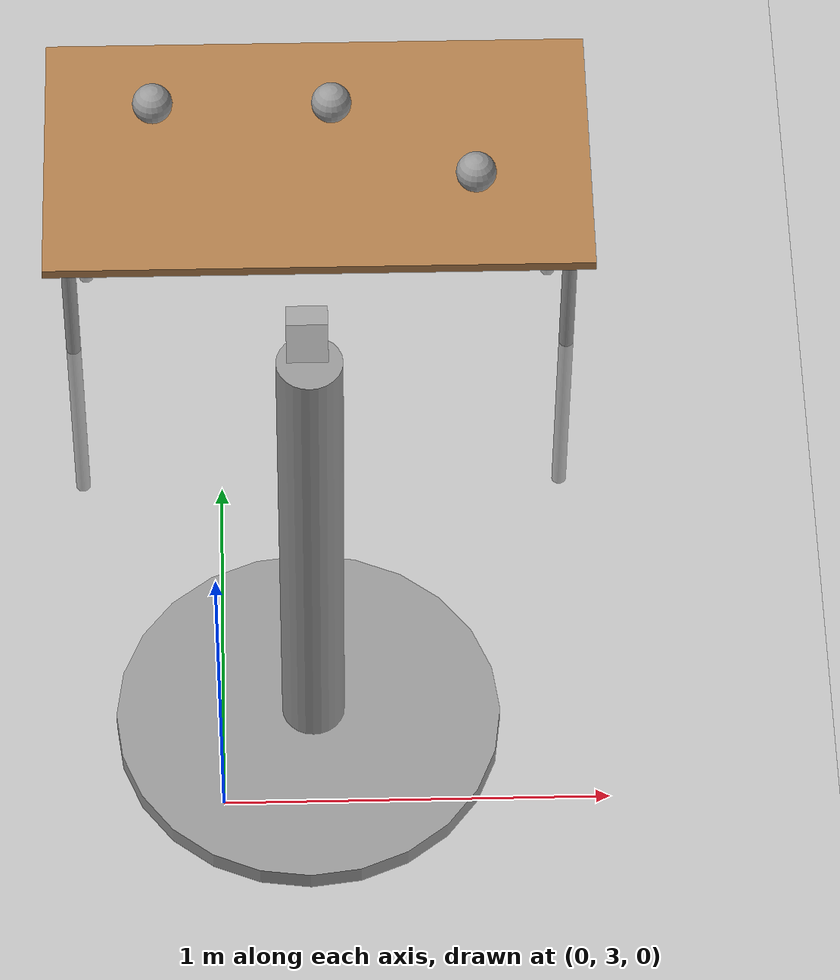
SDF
<sdf version="1.7">
 <world name="default">
  <light name="sun" type="directional">
   <pose>0 0 10 0 -0 0</pose>
   <diffuse>0.8 0.8 0.8 1</diffuse>
   <specular>0.2 0.2 0.2 1</specular>
   <attenuation>
    <range>1000</range>
    <constant>0.9</constant>
    <linear>0.01</linear>
    <quadratic>0.001</quadratic>
   </attenuation>
   <direction>-0.5 0.1 -0.9</direction>
   <spot><inner_angle>0</inner_angle><outer_angle>0</outer_angle><falloff>0</falloff></spot>
  </light>
  <model name="ground_plane">
   <static>1</static>
   <link name="link">
    <collision name="collision">
     <geometry><plane><normal>0 0 1</normal><size>100 100</size></plane></geometry>
     <surface><friction><ode><mu>100</mu><mu2>50</mu2></ode></friction></surface>
    </collision>
    <visual name="visual">
     <cast_shadows>0</cast_shadows>
     <geometry><plane><normal>0 0 1</normal><size>100 100</size></plane></geometry>
     <material>
      <script><uri>file://media/materials/scripts/gazebo.material</uri><name>Gazebo/Grey</name></script>
     </material>
    </visual>
   </link>
  </model>
  <gravity>0 0 -9.8</gravity>
  <magnetic_field>6e-06 2.3e-05 -4.2e-05</magnetic_field>
  <atmosphere type="adiabatic"/>
  <physics type="ode">
   <max_step_size>0.001</max_step_size>
   <real_time_factor>1</real_time_factor>
   <real_time_update_rate>1000</real_time_update_rate>
  </physics>
  <scene><ambient>0.4 0.4 0.4 1</ambient><background>0.7 0.7 0.7 1</background><shadows>1</shadows></scene>
  <spherical_coordinates>
   <surface_model>EARTH_WGS84</surface_model>
   <latitude_deg>0</latitude_deg>
   <longitude_deg>0</longitude_deg>
   <elevation>0</elevation>
   <heading_deg>0</heading_deg>
  </spherical_coordinates>
  <model name="table_3balls">
   <link name="link">
    <visual name="front_left_leg">
     <pose>0.68 0.38 0.5 0 -0 0</pose>
     <geometry><cylinder><radius>0.02</radius><length>1</length></cylinder></geometry>
     <material>
      <script><uri>file://media/materials/scripts/gazebo.material</uri><name>Gazebo/Grey</name></script>
      <shader type="pixel"/>
     </material>
    </visual>
    <visual name="visual1">
     <pose>0 0 1 0 -0 0</pose>
     <geometry><box><size>1.5 0.8 0.03</size></box></geometry>
     <material>
      <script><uri>file://media/materials/scripts/gazebo.material</uri><name>Gazebo/Wood</name></script>
      <shader type="pixel"/>
     </material>
    </visual>
    <visual name="back_right_leg">
     <pose>-0.68 -0.38 0.5 0 -0 0</pose>
     <geometry><cylinder><radius>0.02</radius><length>1</length></cylinder></geometry>
     <material>
      <script><uri>file://media/materials/scripts/gazebo.material</uri><name>Gazebo/Grey</name></script>
      <shader type="pixel"/>
     </material>
    </visual>
    <visual name="back_left_leg">
     <pose>-0.68 0.38 0.5 0 -0 0</pose>
     <geometry><cylinder><radius>0.02</radius><length>1</length></cylinder></geometry>
     <material>
      <script><uri>file://media/materials/scripts/gazebo.material</uri><name>Gazebo/Grey</name></script>
      <shader type="pixel"/>
     </material>
    </visual>
    <visual name="front_right_leg">
     <pose>0.68 -0.38 0.5 0 -0 0</pose>
     <geometry><cylinder><radius>0.02</radius><length>1</length></cylinder></geometry>
     <material>
      <script><uri>file://media/materials/scripts/gazebo.material</uri><name>Gazebo/Grey</name></script>
      <shader type="pixel"/>
     </material>
    </visual>
    <collision name="surface">
     <pose>0 0 1 0 -0 0</pose>
     <geometry><box><size>1.5 0.8 0.03</size></box></geometry>
     <surface>
      <friction>
       <ode><mu>0.6</mu><mu2>0.6</mu2><fdir1>0 0 0</fdir1><slip1>0</slip1><slip2>0</slip2></ode>
       <torsional>
        <coefficient>1</coefficient>
        <patch_radius>0</patch_radius>
        <surface_radius>0</surface_radius>
        <use_patch_radius>1</use_patch_radius>
        <ode><slip>0</slip></ode>
       </torsional>
      </friction>
      <bounce><restitution_coefficient>0</restitution_coefficient><threshold>1e+06</threshold></bounce>
      <contact>
       <collide_without_contact>0</collide_without_contact>
       <collide_without_contact_bitmask>1</collide_without_contact_bitmask>
       <collide_bitmask>1</collide_bitmask>
       <ode>
        <soft_cfm>0</soft_cfm>
        <soft_erp>0.2</soft_erp>
        <kp>1e+13</kp>
        <kd>1</kd>
        <max_vel>0.01</max_vel>
        <min_depth>0</min_depth>
       </ode>
       <bullet>
        <split_impulse>1</split_impulse>
        <split_impulse_penetration_threshold>-0.01</split_impulse_penetration_threshold>
        <soft_cfm>0</soft_cfm>
        <soft_erp>0.2</soft_erp>
        <kp>1e+13</kp>
        <kd>1</kd>
       </bullet>
      </contact>
     </surface>
    </collision>
    <collision name="front_left_leg">
     <pose>0.68 0.38 0.5 0 -0 0</pose>
     <geometry><cylinder><radius>0.02</radius><length>1</length></cylinder></geometry>
     <surface>
      <friction>
       <ode><mu>1</mu><mu2>1</mu2><fdir1>0 0 0</fdir1><slip1>0</slip1><slip2>0</slip2></ode>
       <torsional>
        <coefficient>1</coefficient>
        <patch_radius>0</patch_radius>
        <surface_radius>0</surface_radius>
        <use_patch_radius>1</use_patch_radius>
        <ode><slip>0</slip></ode>
       </torsional>
      </friction>
      <bounce><restitution_coefficient>0</restitution_coefficient><threshold>1e+06</threshold></bounce>
      <contact>
       <collide_without_contact>0</collide_without_contact>
       <collide_without_contact_bitmask>1</collide_without_contact_bitmask>
       <collide_bitmask>1</collide_bitmask>
       <ode>
        <soft_cfm>0</soft_cfm>
        <soft_erp>0.2</soft_erp>
        <kp>1e+13</kp>
        <kd>1</kd>
        <max_vel>0.01</max_vel>
        <min_depth>0</min_depth>
       </ode>
       <bullet>
        <split_impulse>1</split_impulse>
        <split_impulse_penetration_threshold>-0.01</split_impulse_penetration_threshold>
        <soft_cfm>0</soft_cfm>
        <soft_erp>0.2</soft_erp>
        <kp>1e+13</kp>
        <kd>1</kd>
       </bullet>
      </contact>
     </surface>
    </collision>
    <collision name="front_right_leg">
     <pose>0.68 -0.38 0.5 0 -0 0</pose>
     <geometry><cylinder><radius>0.02</radius><length>1</length></cylinder></geometry>
     <surface>
      <friction>
       <ode><mu>1</mu><mu2>1</mu2><fdir1>0 0 0</fdir1><slip1>0</slip1><slip2>0</slip2></ode>
       <torsional>
        <coefficient>1</coefficient>
        <patch_radius>0</patch_radius>
        <surface_radius>0</surface_radius>
        <use_patch_radius>1</use_patch_radius>
        <ode><slip>0</slip></ode>
       </torsional>
      </friction>
      <bounce><restitution_coefficient>0</restitution_coefficient><threshold>1e+06</threshold></bounce>
      <contact>
       <collide_without_contact>0</collide_without_contact>
       <collide_without_contact_bitmask>1</collide_without_contact_bitmask>
       <collide_bitmask>1</collide_bitmask>
       <ode>
        <soft_cfm>0</soft_cfm>
        <soft_erp>0.2</soft_erp>
        <kp>1e+13</kp>
        <kd>1</kd>
        <max_vel>0.01</max_vel>
        <min_depth>0</min_depth>
       </ode>
       <bullet>
        <split_impulse>1</split_impulse>
        <split_impulse_penetration_threshold>-0.01</split_impulse_penetration_threshold>
        <soft_cfm>0</soft_cfm>
        <soft_erp>0.2</soft_erp>
        <kp>1e+13</kp>
        <kd>1</kd>
       </bullet>
      </contact>
     </surface>
    </collision>
    <collision name="back_right_leg">
     <pose>-0.68 -0.38 0.5 0 -0 0</pose>
     <geometry><cylinder><radius>0.02</radius><length>1</length></cylinder></geometry>
     <surface>
      <friction>
       <ode><mu>1</mu><mu2>1</mu2><fdir1>0 0 0</fdir1><slip1>0</slip1><slip2>0</slip2></ode>
       <torsional>
        <coefficient>1</coefficient>
        <patch_radius>0</patch_radius>
        <surface_radius>0</surface_radius>
        <use_patch_radius>1</use_patch_radius>
        <ode><slip>0</slip></ode>
       </torsional>
      </friction>
      <bounce><restitution_coefficient>0</restitution_coefficient><threshold>1e+06</threshold></bounce>
      <contact>
       <collide_without_contact>0</collide_without_contact>
       <collide_without_contact_bitmask>1</collide_without_contact_bitmask>
       <collide_bitmask>1</collide_bitmask>
       <ode>
        <soft_cfm>0</soft_cfm>
        <soft_erp>0.2</soft_erp>
        <kp>1e+13</kp>
        <kd>1</kd>
        <max_vel>0.01</max_vel>
        <min_depth>0</min_depth>
       </ode>
       <bullet>
        <split_impulse>1</split_impulse>
        <split_impulse_penetration_threshold>-0.01</split_impulse_penetration_threshold>
        <soft_cfm>0</soft_cfm>
        <soft_erp>0.2</soft_erp>
        <kp>1e+13</kp>
        <kd>1</kd>
       </bullet>
      </contact>
     </surface>
    </collision>
    <collision name="back_left_leg">
     <pose>-0.68 0.38 0.5 0 -0 0</pose>
     <geometry><cylinder><radius>0.02</radius><length>1</length></cylinder></geometry>
     <surface>
      <friction>
       <ode><mu>1</mu><mu2>1</mu2><fdir1>0 0 0</fdir1><slip1>0</slip1><slip2>0</slip2></ode>
       <torsional>
        <coefficient>1</coefficient>
        <patch_radius>0</patch_radius>
        <surface_radius>0</surface_radius>
        <use_patch_radius>1</use_patch_radius>
        <ode><slip>0</slip></ode>
       </torsional>
      </friction>
      <bounce><restitution_coefficient>0</restitution_coefficient><threshold>1e+06</threshold></bounce>
      <contact>
       <collide_without_contact>0</collide_without_contact>
       <collide_without_contact_bitmask>1</collide_without_contact_bitmask>
       <collide_bitmask>1</collide_bitmask>
       <ode>
        <soft_cfm>0</soft_cfm>
        <soft_erp>0.2</soft_erp>
        <kp>1e+13</kp>
        <kd>1</kd>
        <max_vel>0.01</max_vel>
        <min_depth>0</min_depth>
       </ode>
       <bullet>
        <split_impulse>1</split_impulse>
        <split_impulse_penetration_threshold>-0.01</split_impulse_penetration_threshold>
        <soft_cfm>0</soft_cfm>
        <soft_erp>0.2</soft_erp>
        <kp>1e+13</kp>
        <kd>1</kd>
       </bullet>
      </contact>
     </surface>
    </collision>
   </link>
   <link name="link_0">
    <inertial>
     <mass>0.0013865</mass>
     <inertia>
      <ixx>1.72396e-06</ixx>
      <ixy>0</ixy>
      <ixz>0</ixz>
      <iyy>1.72396e-06</iyy>
      <iyz>0</iyz>
      <izz>1.72396e-06</izz>
     </inertia>
    </inertial>
    <pose>0.432818 -0.130321 1.0814 0 -0 0</pose>
    <visual name="visual">
     <geometry><sphere><radius>0.0557538</radius></sphere></geometry>
     <material>
      <lighting>1</lighting>
      <script><uri>file://media/materials/scripts/gazebo.material</uri><name>Gazebo/Grey</name></script>
      <shader type="pixel"/>
     </material>
    </visual>
    <collision name="collision">
     <geometry><sphere><radius>0.055754</radius></sphere></geometry>
     <surface>
      <friction>
       <ode><mu>1</mu><mu2>1</mu2><fdir1>0 0 0</fdir1><slip1>0</slip1><slip2>0</slip2></ode>
       <torsional>
        <coefficient>1</coefficient>
        <patch_radius>0</patch_radius>
        <surface_radius>0</surface_radius>
        <use_patch_radius>1</use_patch_radius>
        <ode><slip>0</slip></ode>
       </torsional>
      </friction>
      <bounce><restitution_coefficient>0</restitution_coefficient><threshold>1e+06</threshold></bounce>
      <contact>
       <collide_without_contact>0</collide_without_contact>
       <collide_without_contact_bitmask>1</collide_without_contact_bitmask>
       <collide_bitmask>1</collide_bitmask>
       <ode>
        <soft_cfm>0</soft_cfm>
        <soft_erp>0.2</soft_erp>
        <kp>1e+13</kp>
        <kd>1</kd>
        <max_vel>0.01</max_vel>
        <min_depth>0</min_depth>
       </ode>
       <bullet>
        <split_impulse>1</split_impulse>
        <split_impulse_penetration_threshold>-0.01</split_impulse_penetration_threshold>
        <soft_cfm>0</soft_cfm>
        <soft_erp>0.2</soft_erp>
        <kp>1e+13</kp>
        <kd>1</kd>
       </bullet>
      </contact>
     </surface>
    </collision>
   </link>
   <link name="link_0_clone">
    <inertial>
     <mass>0.0013865</mass>
     <inertia>
      <ixx>1.72396e-06</ixx>
      <ixy>0</ixy>
      <ixz>0</ixz>
      <iyy>1.72396e-06</iyy>
      <iyz>0</iyz>
      <izz>1.72396e-06</izz>
     </inertia>
    </inertial>
    <pose>-0.450537 0.130503 1.0814 0 -0 0</pose>
    <visual name="visual">
     <geometry><sphere><radius>0.0557538</radius></sphere></geometry>
     <material>
      <lighting>1</lighting>
      <script><uri>file://media/materials/scripts/gazebo.material</uri><name>Gazebo/Grey</name></script>
      <shader type="pixel"/>
     </material>
    </visual>
    <collision name="collision">
     <geometry><sphere><radius>0.055754</radius></sphere></geometry>
     <surface>
      <friction>
       <ode><mu>1</mu><mu2>1</mu2><fdir1>0 0 0</fdir1><slip1>0</slip1><slip2>0</slip2></ode>
       <torsional>
        <coefficient>1</coefficient>
        <patch_radius>0</patch_radius>
        <surface_radius>0</surface_radius>
        <use_patch_radius>1</use_patch_radius>
        <ode><slip>0</slip></ode>
       </torsional>
      </friction>
      <bounce><restitution_coefficient>0</restitution_coefficient><threshold>1e+06</threshold></bounce>
      <contact>
       <collide_without_contact>0</collide_without_contact>
       <collide_without_contact_bitmask>1</collide_without_contact_bitmask>
       <collide_bitmask>1</collide_bitmask>
       <ode>
        <soft_cfm>0</soft_cfm>
        <soft_erp>0.2</soft_erp>
        <kp>1e+13</kp>
        <kd>1</kd>
        <max_vel>0.01</max_vel>
        <min_depth>0</min_depth>
       </ode>
       <bullet>
        <split_impulse>1</split_impulse>
        <split_impulse_penetration_threshold>-0.01</split_impulse_penetration_threshold>
        <soft_cfm>0</soft_cfm>
        <soft_erp>0.2</soft_erp>
        <kp>1e+13</kp>
        <kd>1</kd>
       </bullet>
      </contact>
     </surface>
    </collision>
   </link>
   <link name="link_0_clone_0">
    <inertial>
     <mass>0.0013865</mass>
     <inertia>
      <ixx>1.72396e-06</ixx>
      <ixy>0</ixy>
      <ixz>0</ixz>
      <iyy>1.72396e-06</iyy>
      <iyz>0</iyz>
      <izz>1.72396e-06</izz>
     </inertia>
    </inertial>
    <pose>0.041991 0.123994 1.0814 0 -0 0</pose>
    <visual name="visual">
     <geometry><sphere><radius>0.0557538</radius></sphere></geometry>
     <material>
      <lighting>1</lighting>
      <script><uri>file://media/materials/scripts/gazebo.material</uri><name>Gazebo/Grey</name></script>
      <shader type="pixel"/>
     </material>
    </visual>
    <collision name="collision">
     <geometry><sphere><radius>0.055754</radius></sphere></geometry>
     <surface>
      <friction>
       <ode><mu>1</mu><mu2>1</mu2><fdir1>0 0 0</fdir1><slip1>0</slip1><slip2>0</slip2></ode>
       <torsional>
        <coefficient>1</coefficient>
        <patch_radius>0</patch_radius>
        <surface_radius>0</surface_radius>
        <use_patch_radius>1</use_patch_radius>
        <ode><slip>0</slip></ode>
       </torsional>
      </friction>
      <bounce><restitution_coefficient>0</restitution_coefficient><threshold>1e+06</threshold></bounce>
      <contact>
       <collide_without_contact>0</collide_without_contact>
       <collide_without_contact_bitmask>1</collide_without_contact_bitmask>
       <collide_bitmask>1</collide_bitmask>
       <ode>
        <soft_cfm>0</soft_cfm>
        <soft_erp>0.2</soft_erp>
        <kp>1e+13</kp>
        <kd>1</kd>
        <max_vel>0.01</max_vel>
        <min_depth>0</min_depth>
       </ode>
       <bullet>
        <split_impulse>1</split_impulse>
        <split_impulse_penetration_threshold>-0.01</split_impulse_penetration_threshold>
        <soft_cfm>0</soft_cfm>
        <soft_erp>0.2</soft_erp>
        <kp>1e+13</kp>
        <kd>1</kd>
       </bullet>
      </contact>
     </surface>
    </collision>
   </link>
   <static>1</static>
   <pose>0.27245 4.87329 -0.647816 0 -0 0</pose>
  </model>
  <model name="pole_cam_plugin_v1">
   <link name="link_0">
    <inertial>
     <mass>0.0387268</mass>
     <inertia>
      <ixx>0.00721174</ixx>
      <ixy>0</ixy>
      <ixz>0</ixz>
      <iyy>0.00721174</iyy>
      <iyz>0</iyz>
      <izz>0.000126323</izz>
     </inertia>
    </inertial>
    <pose>0.002386 -0.025273 -0.255373 0 -0 0</pose>
    <visual name="visual">
     <geometry><cylinder><radius>0.0807696</radius><length>1.48831</length></cylinder></geometry>
     <material>
      <lighting>1</lighting>
      <script><uri>file://media/materials/scripts/gazebo.material</uri><name>Gazebo/Grey</name></script>
      <shader type="pixel"/>
      <emissive>0 0 0 1</emissive>
     </material>
    </visual>
    <collision name="collision">
     <geometry><cylinder><radius>0.08077</radius><length>1.48831</length></cylinder></geometry>
     <surface>
      <friction>
       <ode><mu>1</mu><mu2>1</mu2><fdir1>0 0 0</fdir1><slip1>0</slip1><slip2>0</slip2></ode>
       <torsional>
        <coefficient>1</coefficient>
        <patch_radius>0</patch_radius>
        <surface_radius>0</surface_radius>
        <use_patch_radius>1</use_patch_radius>
        <ode><slip>0</slip></ode>
       </torsional>
      </friction>
      <bounce><restitution_coefficient>0</restitution_coefficient><threshold>1e+06</threshold></bounce>
      <contact>
       <collide_without_contact>0</collide_without_contact>
       <collide_without_contact_bitmask>1</collide_without_contact_bitmask>
       <collide_bitmask>1</collide_bitmask>
       <ode>
        <soft_cfm>0</soft_cfm>
        <soft_erp>0.2</soft_erp>
        <kp>1e+13</kp>
        <kd>1</kd>
        <max_vel>0.01</max_vel>
        <min_depth>0</min_depth>
       </ode>
       <bullet>
        <split_impulse>1</split_impulse>
        <split_impulse_penetration_threshold>-0.01</split_impulse_penetration_threshold>
        <soft_cfm>0</soft_cfm>
        <soft_erp>0.2</soft_erp>
        <kp>1e+13</kp>
        <kd>1</kd>
       </bullet>
      </contact>
     </surface>
    </collision>
   </link>
   <link name="link_0_0">
    <inertial>
     <mass>0.0561422</mass>
     <inertia>
      <ixx>0.00352364</ixx>
      <ixy>0</ixy>
      <ixz>0</ixz>
      <iyy>0.00352364</iyy>
      <iyz>0</iyz>
      <izz>0.00701778</izz>
     </inertia>
    </inertial>
    <pose>-0.010867 -0.031907 -1.03391 0 -0 0</pose>
    <visual name="visual">
     <geometry><cylinder><radius>0.5</radius><length>0.0561423</length></cylinder></geometry>
     <material>
      <lighting>1</lighting>
      <script><uri>file://media/materials/scripts/gazebo.material</uri><name>Gazebo/Grey</name></script>
      <shader type="pixel"/>
      <emissive>0 0 0 1</emissive>
     </material>
    </visual>
    <collision name="collision">
     <geometry><cylinder><radius>0.5</radius><length>0.056142</length></cylinder></geometry>
     <surface>
      <friction>
       <ode><mu>1</mu><mu2>1</mu2><fdir1>0 0 0</fdir1><slip1>0</slip1><slip2>0</slip2></ode>
       <torsional>
        <coefficient>1</coefficient>
        <patch_radius>0</patch_radius>
        <surface_radius>0</surface_radius>
        <use_patch_radius>1</use_patch_radius>
        <ode><slip>0</slip></ode>
       </torsional>
      </friction>
      <bounce><restitution_coefficient>0</restitution_coefficient><threshold>1e+06</threshold></bounce>
      <contact>
       <collide_without_contact>0</collide_without_contact>
       <collide_without_contact_bitmask>1</collide_without_contact_bitmask>
       <collide_bitmask>1</collide_bitmask>
       <ode>
        <soft_cfm>0</soft_cfm>
        <soft_erp>0.2</soft_erp>
        <kp>1e+13</kp>
        <kd>1</kd>
        <max_vel>0.01</max_vel>
        <min_depth>0</min_depth>
       </ode>
       <bullet>
        <split_impulse>1</split_impulse>
        <split_impulse_penetration_threshold>-0.01</split_impulse_penetration_threshold>
        <soft_cfm>0</soft_cfm>
        <soft_erp>0.2</soft_erp>
        <kp>1e+13</kp>
        <kd>1</kd>
       </bullet>
      </contact>
     </surface>
    </collision>
   </link>
   <model name="camera">
    <pose>-0.002386 0.025275 0.53391 0 0.44153 1.5708</pose>
    <link name="link">
     <inertial>
      <mass>0.1</mass>
      <inertia>
       <ixx>0.000166667</ixx>
       <iyy>0.000166667</iyy>
       <izz>0.000166667</izz>
       <ixy>0</ixy>
       <ixz>0</ixz>
       <iyz>0</iyz>
      </inertia>
     </inertial>
     <collision name="collision"><geometry><box><size>0.1 0.1 0.1</size></box></geometry></collision>
     <visual name="visual"><geometry><box><size>0.1 0.1 0.1</size></box></geometry></visual>
     <sensor name="camera" type="camera">
      <camera>
       <horizontal_fov>1.047</horizontal_fov>
       <image><width>320</width><height>240</height></image>
       <clip><near>0.1</near><far>100</far></clip>
      </camera>
      <always_on>1</always_on>
      <update_rate>30</update_rate>
      <visualize>1</visualize>
     </sensor>
    </link>
   </model>
   <joint name="link_0_JOINT_0_0" type="fixed">
    <parent>link_0</parent>
    <child>camera::link</child>
    <physics>
     <ode><limit><cfm>0</cfm><erp>0.2</erp></limit><suspension><cfm>0</cfm><erp>0.2</erp></suspension></ode>
    </physics>
   </joint>
   <joint name="link_0_JOINT_0" type="fixed">
    <parent>link_0_0</parent>
    <child>link_0</child>
    <physics>
     <ode><limit><cfm>0</cfm><erp>0.2</erp></limit><suspension><cfm>0</cfm><erp>0.2</erp></suspension></ode>
    </physics>
   </joint>
   <static>0</static>
   <pose>0.232742 3.27184 1.06198 -3e-06 -2e-06 0.000293</pose>
  </model>
 </world>
</sdf>
